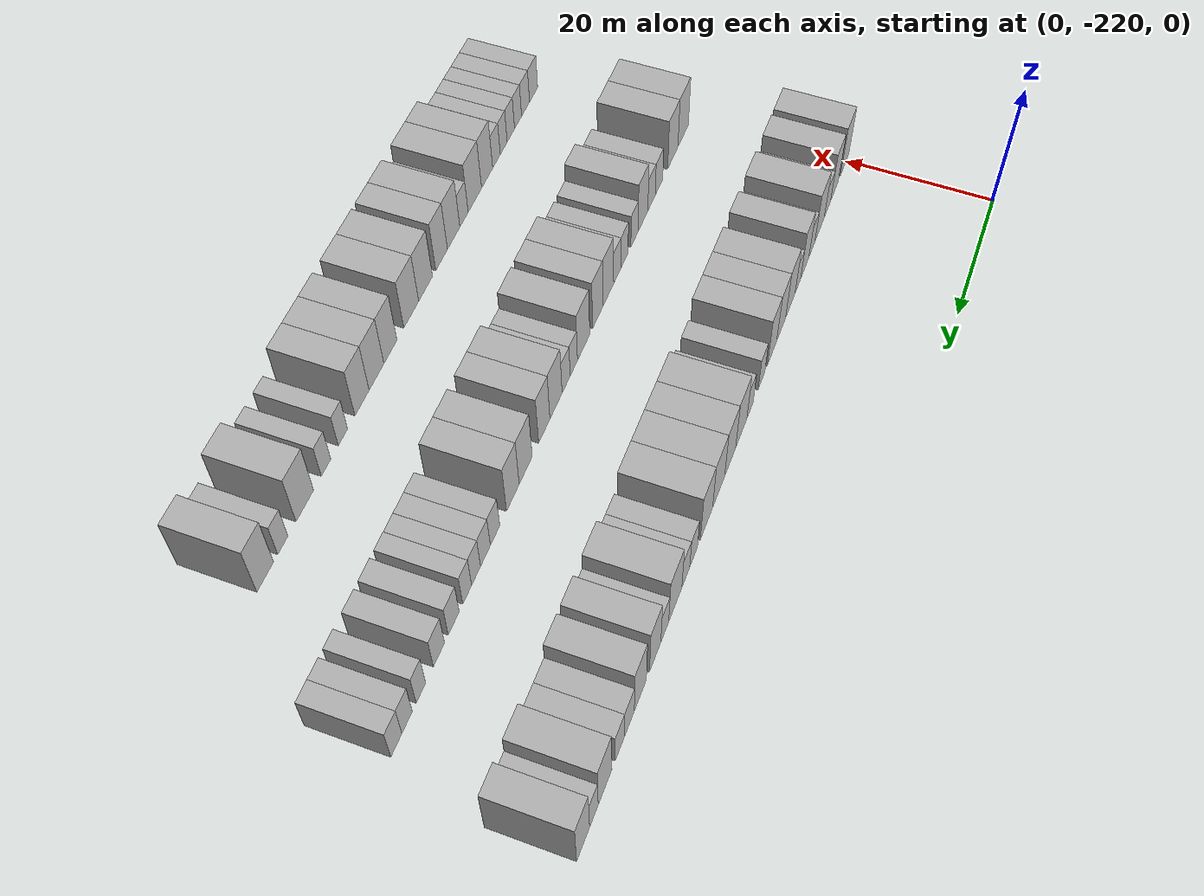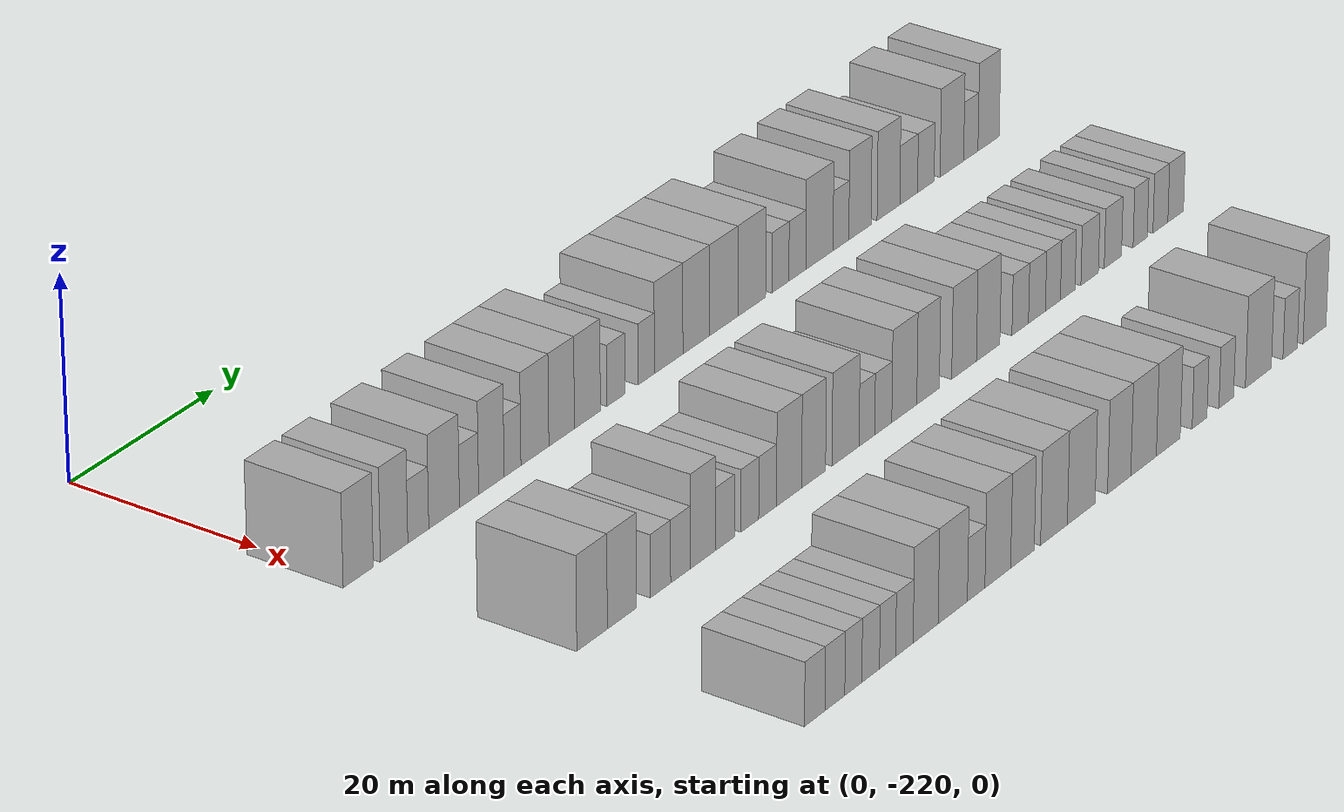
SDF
<sdf version="1.6">
 <world name="default">
  <model name="building_38">
   <static>1</static>
   <pose>25.0000 -219.2709 0 0.000000 0.000000 0.000000</pose>
   <link name="link">
    <pose>0 0 4.50 0 0 0</pose>
    <collision name="collision"><geometry><box><size>10.0000 4.2037 9.0000</size></box></geometry></collision>
    <visual name="visual">
     <cast_shadows>0</cast_shadows>
     <geometry><box><size>10.0000 4.2037 9.0000</size></box></geometry>
     <material>
      <script>
       <uri>model://HANNAS_wall/materials/scripts</uri>
       <uri>model://HANNAS_wall/materials/textures</uri>
       <name>vrc/HANNAS_wall</name>
      </script>
     </material>
    </visual>
   </link>
  </model>
  <model name="building_39">
   <static>1</static>
   <pose>25.0000 -214.2407 0 0.000000 0.000000 0.000000</pose>
   <link name="link">
    <pose>0 0 4.50 0 0 0</pose>
    <collision name="collision"><geometry><box><size>10.0000 3.8568 9.0000</size></box></geometry></collision>
    <visual name="visual">
     <cast_shadows>0</cast_shadows>
     <geometry><box><size>10.0000 3.8568 9.0000</size></box></geometry>
     <material>
      <script>
       <uri>model://HANNAS_wall/materials/scripts</uri>
       <uri>model://HANNAS_wall/materials/textures</uri>
       <name>vrc/HANNAS_wall</name>
      </script>
     </material>
    </visual>
   </link>
  </model>
  <model name="building_40">
   <static>1</static>
   <pose>25.0000 -210.8254 0 0.000000 0.000000 0.000000</pose>
   <link name="link">
    <pose>0 0 3.00 0 0 0</pose>
    <collision name="collision"><geometry><box><size>10.0000 2.9737 6.0000</size></box></geometry></collision>
    <visual name="visual">
     <cast_shadows>0</cast_shadows>
     <geometry><box><size>10.0000 2.9737 6.0000</size></box></geometry>
     <material>
      <script>
       <uri>model://HANNAS_wall/materials/scripts</uri>
       <uri>model://HANNAS_wall/materials/textures</uri>
       <name>vrc/HANNAS_wall</name>
      </script>
     </material>
    </visual>
   </link>
  </model>
  <model name="building_41">
   <static>1</static>
   <pose>25.0000 -207.1361 0 0.000000 0.000000 0.000000</pose>
   <link name="link">
    <pose>0 0 4.50 0 0 0</pose>
    <collision name="collision"><geometry><box><size>10.0000 4.4049 9.0000</size></box></geometry></collision>
    <visual name="visual">
     <cast_shadows>0</cast_shadows>
     <geometry><box><size>10.0000 4.4049 9.0000</size></box></geometry>
     <material>
      <script>
       <uri>model://HANNAS_wall/materials/scripts</uri>
       <uri>model://HANNAS_wall/materials/textures</uri>
       <name>vrc/HANNAS_wall</name>
      </script>
     </material>
    </visual>
   </link>
  </model>
  <model name="building_42">
   <static>1</static>
   <pose>25.0000 -203.5520 0 0.000000 0.000000 0.000000</pose>
   <link name="link">
    <pose>0 0 3.00 0 0 0</pose>
    <collision name="collision"><geometry><box><size>10.0000 2.7633 6.0000</size></box></geometry></collision>
    <visual name="visual">
     <cast_shadows>0</cast_shadows>
     <geometry><box><size>10.0000 2.7633 6.0000</size></box></geometry>
     <material>
      <script>
       <uri>model://HANNAS_wall/materials/scripts</uri>
       <uri>model://HANNAS_wall/materials/textures</uri>
       <name>vrc/HANNAS_wall</name>
      </script>
     </material>
    </visual>
   </link>
  </model>
  <model name="building_43">
   <static>1</static>
   <pose>25.0000 -200.3114 0 0.000000 0.000000 0.000000</pose>
   <link name="link">
    <pose>0 0 4.50 0 0 0</pose>
    <collision name="collision"><geometry><box><size>10.0000 3.7179 9.0000</size></box></geometry></collision>
    <visual name="visual">
     <cast_shadows>0</cast_shadows>
     <geometry><box><size>10.0000 3.7179 9.0000</size></box></geometry>
     <material>
      <script>
       <uri>model://HANNAS_wall/materials/scripts</uri>
       <uri>model://HANNAS_wall/materials/textures</uri>
       <name>vrc/HANNAS_wall</name>
      </script>
     </material>
    </visual>
   </link>
  </model>
  <model name="building_44">
   <static>1</static>
   <pose>25.0000 -197.2263 0 0.000000 0.000000 0.000000</pose>
   <link name="link">
    <pose>0 0 3.00 0 0 0</pose>
    <collision name="collision"><geometry><box><size>10.0000 2.4525 6.0000</size></box></geometry></collision>
    <visual name="visual">
     <cast_shadows>0</cast_shadows>
     <geometry><box><size>10.0000 2.4525 6.0000</size></box></geometry>
     <material>
      <script>
       <uri>model://HANNAS_wall/materials/scripts</uri>
       <uri>model://HANNAS_wall/materials/textures</uri>
       <name>vrc/HANNAS_wall</name>
      </script>
     </material>
    </visual>
   </link>
  </model>
  <model name="building_45">
   <static>1</static>
   <pose>25.0000 -193.9364 0 0.000000 0.000000 0.000000</pose>
   <link name="link">
    <pose>0 0 4.50 0 0 0</pose>
    <collision name="collision"><geometry><box><size>10.0000 4.1274 9.0000</size></box></geometry></collision>
    <visual name="visual">
     <cast_shadows>0</cast_shadows>
     <geometry><box><size>10.0000 4.1274 9.0000</size></box></geometry>
     <material>
      <script>
       <uri>model://HANNAS_wall/materials/scripts</uri>
       <uri>model://HANNAS_wall/materials/textures</uri>
       <name>vrc/HANNAS_wall</name>
      </script>
     </material>
    </visual>
   </link>
  </model>
  <model name="building_46">
   <static>1</static>
   <pose>25.0000 -189.9659 0 0.000000 0.000000 0.000000</pose>
   <link name="link">
    <pose>0 0 4.50 0 0 0</pose>
    <collision name="collision"><geometry><box><size>10.0000 3.8136 9.0000</size></box></geometry></collision>
    <visual name="visual">
     <cast_shadows>0</cast_shadows>
     <geometry><box><size>10.0000 3.8136 9.0000</size></box></geometry>
     <material>
      <script>
       <uri>model://HANNAS_wall/materials/scripts</uri>
       <uri>model://HANNAS_wall/materials/textures</uri>
       <name>vrc/HANNAS_wall</name>
      </script>
     </material>
    </visual>
   </link>
  </model>
  <model name="building_47">
   <static>1</static>
   <pose>25.0000 -186.1105 0 0.000000 0.000000 0.000000</pose>
   <link name="link">
    <pose>0 0 4.50 0 0 0</pose>
    <collision name="collision"><geometry><box><size>10.0000 3.8971 9.0000</size></box></geometry></collision>
    <visual name="visual">
     <cast_shadows>0</cast_shadows>
     <geometry><box><size>10.0000 3.8971 9.0000</size></box></geometry>
     <material>
      <script>
       <uri>model://HANNAS_wall/materials/scripts</uri>
       <uri>model://HANNAS_wall/materials/textures</uri>
       <name>vrc/HANNAS_wall</name>
      </script>
     </material>
    </visual>
   </link>
  </model>
  <model name="building_48">
   <static>1</static>
   <pose>25.0000 -181.7985 0 0.000000 0.000000 0.000000</pose>
   <link name="link">
    <pose>0 0 3.00 0 0 0</pose>
    <collision name="collision"><geometry><box><size>10.0000 2.7270 6.0000</size></box></geometry></collision>
    <visual name="visual">
     <cast_shadows>0</cast_shadows>
     <geometry><box><size>10.0000 2.7270 6.0000</size></box></geometry>
     <material>
      <script>
       <uri>model://HANNAS_wall/materials/scripts</uri>
       <uri>model://HANNAS_wall/materials/textures</uri>
       <name>vrc/HANNAS_wall</name>
      </script>
     </material>
    </visual>
   </link>
  </model>
  <model name="building_49">
   <static>1</static>
   <pose>25.0000 -177.1888 0 0.000000 0.000000 0.000000</pose>
   <link name="link">
    <pose>0 0 3.00 0 0 0</pose>
    <collision name="collision"><geometry><box><size>10.0000 2.4924 6.0000</size></box></geometry></collision>
    <visual name="visual">
     <cast_shadows>0</cast_shadows>
     <geometry><box><size>10.0000 2.4924 6.0000</size></box></geometry>
     <material>
      <script>
       <uri>model://HANNAS_wall/materials/scripts</uri>
       <uri>model://HANNAS_wall/materials/textures</uri>
       <name>vrc/HANNAS_wall</name>
      </script>
     </material>
    </visual>
   </link>
  </model>
  <model name="building_50">
   <static>1</static>
   <pose>25.0000 -173.7382 0 0.000000 0.000000 0.000000</pose>
   <link name="link">
    <pose>0 0 4.50 0 0 0</pose>
    <collision name="collision"><geometry><box><size>10.0000 4.4089 9.0000</size></box></geometry></collision>
    <visual name="visual">
     <cast_shadows>0</cast_shadows>
     <geometry><box><size>10.0000 4.4089 9.0000</size></box></geometry>
     <material>
      <script>
       <uri>model://HANNAS_wall/materials/scripts</uri>
       <uri>model://HANNAS_wall/materials/textures</uri>
       <name>vrc/HANNAS_wall</name>
      </script>
     </material>
    </visual>
   </link>
  </model>
  <model name="building_51">
   <static>1</static>
   <pose>25.0000 -169.4533 0 0.000000 0.000000 0.000000</pose>
   <link name="link">
    <pose>0 0 4.50 0 0 0</pose>
    <collision name="collision"><geometry><box><size>10.0000 4.1609 9.0000</size></box></geometry></collision>
    <visual name="visual">
     <cast_shadows>0</cast_shadows>
     <geometry><box><size>10.0000 4.1609 9.0000</size></box></geometry>
     <material>
      <script>
       <uri>model://HANNAS_wall/materials/scripts</uri>
       <uri>model://HANNAS_wall/materials/textures</uri>
       <name>vrc/HANNAS_wall</name>
      </script>
     </material>
    </visual>
   </link>
  </model>
  <model name="building_52">
   <static>1</static>
   <pose>25.0000 -165.1561 0 0.000000 0.000000 0.000000</pose>
   <link name="link">
    <pose>0 0 4.50 0 0 0</pose>
    <collision name="collision"><geometry><box><size>10.0000 4.4334 9.0000</size></box></geometry></collision>
    <visual name="visual">
     <cast_shadows>0</cast_shadows>
     <geometry><box><size>10.0000 4.4334 9.0000</size></box></geometry>
     <material>
      <script>
       <uri>model://HANNAS_wall/materials/scripts</uri>
       <uri>model://HANNAS_wall/materials/textures</uri>
       <name>vrc/HANNAS_wall</name>
      </script>
     </material>
    </visual>
   </link>
  </model>
  <model name="building_53">
   <static>1</static>
   <pose>25.0000 -160.7259 0 0.000000 0.000000 0.000000</pose>
   <link name="link">
    <pose>0 0 4.50 0 0 0</pose>
    <collision name="collision"><geometry><box><size>10.0000 4.4270 9.0000</size></box></geometry></collision>
    <visual name="visual">
     <cast_shadows>0</cast_shadows>
     <geometry><box><size>10.0000 4.4270 9.0000</size></box></geometry>
     <material>
      <script>
       <uri>model://HANNAS_wall/materials/scripts</uri>
       <uri>model://HANNAS_wall/materials/textures</uri>
       <name>vrc/HANNAS_wall</name>
      </script>
     </material>
    </visual>
   </link>
  </model>
  <model name="building_54">
   <static>1</static>
   <pose>25.0000 -156.1441 0 0.000000 0.000000 0.000000</pose>
   <link name="link">
    <pose>0 0 3.00 0 0 0</pose>
    <collision name="collision"><geometry><box><size>10.0000 2.7366 6.0000</size></box></geometry></collision>
    <visual name="visual">
     <cast_shadows>0</cast_shadows>
     <geometry><box><size>10.0000 2.7366 6.0000</size></box></geometry>
     <material>
      <script>
       <uri>model://HANNAS_wall/materials/scripts</uri>
       <uri>model://HANNAS_wall/materials/textures</uri>
       <name>vrc/HANNAS_wall</name>
      </script>
     </material>
    </visual>
   </link>
  </model>
  <model name="building_55">
   <static>1</static>
   <pose>25.0000 -153.4066 0 0.000000 0.000000 0.000000</pose>
   <link name="link">
    <pose>0 0 3.00 0 0 0</pose>
    <collision name="collision"><geometry><box><size>10.0000 2.7386 6.0000</size></box></geometry></collision>
    <visual name="visual">
     <cast_shadows>0</cast_shadows>
     <geometry><box><size>10.0000 2.7386 6.0000</size></box></geometry>
     <material>
      <script>
       <uri>model://HANNAS_wall/materials/scripts</uri>
       <uri>model://HANNAS_wall/materials/textures</uri>
       <name>vrc/HANNAS_wall</name>
      </script>
     </material>
    </visual>
   </link>
  </model>
  <model name="building_56">
   <static>1</static>
   <pose>25.0000 -149.8227 0 0.000000 0.000000 0.000000</pose>
   <link name="link">
    <pose>0 0 4.50 0 0 0</pose>
    <collision name="collision"><geometry><box><size>10.0000 4.4291 9.0000</size></box></geometry></collision>
    <visual name="visual">
     <cast_shadows>0</cast_shadows>
     <geometry><box><size>10.0000 4.4291 9.0000</size></box></geometry>
     <material>
      <script>
       <uri>model://HANNAS_wall/materials/scripts</uri>
       <uri>model://HANNAS_wall/materials/textures</uri>
       <name>vrc/HANNAS_wall</name>
      </script>
     </material>
    </visual>
   </link>
  </model>
  <model name="building_57">
   <static>1</static>
   <pose>25.0000 -146.3169 0 0.000000 0.000000 0.000000</pose>
   <link name="link">
    <pose>0 0 3.00 0 0 0</pose>
    <collision name="collision"><geometry><box><size>10.0000 2.5825 6.0000</size></box></geometry></collision>
    <visual name="visual">
     <cast_shadows>0</cast_shadows>
     <geometry><box><size>10.0000 2.5825 6.0000</size></box></geometry>
     <material>
      <script>
       <uri>model://HANNAS_wall/materials/scripts</uri>
       <uri>model://HANNAS_wall/materials/textures</uri>
       <name>vrc/HANNAS_wall</name>
      </script>
     </material>
    </visual>
   </link>
  </model>
  <model name="building_58">
   <static>1</static>
   <pose>25.0000 -143.1932 0 0.000000 0.000000 0.000000</pose>
   <link name="link">
    <pose>0 0 4.50 0 0 0</pose>
    <collision name="collision"><geometry><box><size>10.0000 3.6650 9.0000</size></box></geometry></collision>
    <visual name="visual">
     <cast_shadows>0</cast_shadows>
     <geometry><box><size>10.0000 3.6650 9.0000</size></box></geometry>
     <material>
      <script>
       <uri>model://HANNAS_wall/materials/scripts</uri>
       <uri>model://HANNAS_wall/materials/textures</uri>
       <name>vrc/HANNAS_wall</name>
      </script>
     </material>
    </visual>
   </link>
  </model>
  <model name="building_59">
   <static>1</static>
   <pose>25.0000 -138.4674 0 0.000000 0.000000 0.000000</pose>
   <link name="link">
    <pose>0 0 4.50 0 0 0</pose>
    <collision name="collision"><geometry><box><size>10.0000 3.7867 9.0000</size></box></geometry></collision>
    <visual name="visual">
     <cast_shadows>0</cast_shadows>
     <geometry><box><size>10.0000 3.7867 9.0000</size></box></geometry>
     <material>
      <script>
       <uri>model://HANNAS_wall/materials/scripts</uri>
       <uri>model://HANNAS_wall/materials/textures</uri>
       <name>vrc/HANNAS_wall</name>
      </script>
     </material>
    </visual>
   </link>
  </model>
  <model name="building_60">
   <static>1</static>
   <pose>25.0000 -135.0827 0 0.000000 0.000000 0.000000</pose>
   <link name="link">
    <pose>0 0 3.00 0 0 0</pose>
    <collision name="collision"><geometry><box><size>10.0000 2.9827 6.0000</size></box></geometry></collision>
    <visual name="visual">
     <cast_shadows>0</cast_shadows>
     <geometry><box><size>10.0000 2.9827 6.0000</size></box></geometry>
     <material>
      <script>
       <uri>model://HANNAS_wall/materials/scripts</uri>
       <uri>model://HANNAS_wall/materials/textures</uri>
       <name>vrc/HANNAS_wall</name>
      </script>
     </material>
    </visual>
   </link>
  </model>
  <model name="building_61">
   <static>1</static>
   <pose>25.0000 -132.1897 0 0.000000 0.000000 0.000000</pose>
   <link name="link">
    <pose>0 0 3.00 0 0 0</pose>
    <collision name="collision"><geometry><box><size>10.0000 2.8032 6.0000</size></box></geometry></collision>
    <visual name="visual">
     <cast_shadows>0</cast_shadows>
     <geometry><box><size>10.0000 2.8032 6.0000</size></box></geometry>
     <material>
      <script>
       <uri>model://HANNAS_wall/materials/scripts</uri>
       <uri>model://HANNAS_wall/materials/textures</uri>
       <name>vrc/HANNAS_wall</name>
      </script>
     </material>
    </visual>
   </link>
  </model>
  <model name="building_62">
   <static>1</static>
   <pose>25.0000 -127.7783 0 0.000000 0.000000 0.000000</pose>
   <link name="link">
    <pose>0 0 4.50 0 0 0</pose>
    <collision name="collision"><geometry><box><size>10.0000 4.0196 9.0000</size></box></geometry></collision>
    <visual name="visual">
     <cast_shadows>0</cast_shadows>
     <geometry><box><size>10.0000 4.0196 9.0000</size></box></geometry>
     <material>
      <script>
       <uri>model://HANNAS_wall/materials/scripts</uri>
       <uri>model://HANNAS_wall/materials/textures</uri>
       <name>vrc/HANNAS_wall</name>
      </script>
     </material>
    </visual>
   </link>
  </model>
  <model name="building_63">
   <static>1</static>
   <pose>25.0000 -124.5375 0 0.000000 0.000000 0.000000</pose>
   <link name="link">
    <pose>0 0 3.00 0 0 0</pose>
    <collision name="collision"><geometry><box><size>10.0000 2.4621 6.0000</size></box></geometry></collision>
    <visual name="visual">
     <cast_shadows>0</cast_shadows>
     <geometry><box><size>10.0000 2.4621 6.0000</size></box></geometry>
     <material>
      <script>
       <uri>model://HANNAS_wall/materials/scripts</uri>
       <uri>model://HANNAS_wall/materials/textures</uri>
       <name>vrc/HANNAS_wall</name>
      </script>
     </material>
    </visual>
   </link>
  </model>
  <model name="building_64">
   <static>1</static>
   <pose>25.0000 -121.4803 0 0.000000 0.000000 0.000000</pose>
   <link name="link">
    <pose>0 0 4.50 0 0 0</pose>
    <collision name="collision"><geometry><box><size>10.0000 3.6522 9.0000</size></box></geometry></collision>
    <visual name="visual">
     <cast_shadows>0</cast_shadows>
     <geometry><box><size>10.0000 3.6522 9.0000</size></box></geometry>
     <material>
      <script>
       <uri>model://HANNAS_wall/materials/scripts</uri>
       <uri>model://HANNAS_wall/materials/textures</uri>
       <name>vrc/HANNAS_wall</name>
      </script>
     </material>
    </visual>
   </link>
  </model>
  <model name="building_226">
   <static>1</static>
   <pose>47.0000 -216.8254 0 0.000000 0.000000 0.000000</pose>
   <link name="link">
    <pose>0 0 4.50 0 0 0</pose>
    <collision name="collision"><geometry><box><size>10.0000 4.3660 9.0000</size></box></geometry></collision>
    <visual name="visual">
     <cast_shadows>0</cast_shadows>
     <geometry><box><size>10.0000 4.3660 9.0000</size></box></geometry>
     <material>
      <script>
       <uri>model://HANNAS_wall/materials/scripts</uri>
       <uri>model://HANNAS_wall/materials/textures</uri>
       <name>vrc/HANNAS_wall</name>
      </script>
     </material>
    </visual>
   </link>
  </model>
  <model name="building_227">
   <static>1</static>
   <pose>47.0000 -212.5301 0 0.000000 0.000000 0.000000</pose>
   <link name="link">
    <pose>0 0 4.50 0 0 0</pose>
    <collision name="collision"><geometry><box><size>10.0000 4.2246 9.0000</size></box></geometry></collision>
    <visual name="visual">
     <cast_shadows>0</cast_shadows>
     <geometry><box><size>10.0000 4.2246 9.0000</size></box></geometry>
     <material>
      <script>
       <uri>model://HANNAS_wall/materials/scripts</uri>
       <uri>model://HANNAS_wall/materials/textures</uri>
       <name>vrc/HANNAS_wall</name>
      </script>
     </material>
    </visual>
   </link>
  </model>
  <model name="building_228">
   <static>1</static>
   <pose>47.0000 -206.9397 0 0.000000 0.000000 0.000000</pose>
   <link name="link">
    <pose>0 0 3.00 0 0 0</pose>
    <collision name="collision"><geometry><box><size>10.0000 2.9561 6.0000</size></box></geometry></collision>
    <visual name="visual">
     <cast_shadows>0</cast_shadows>
     <geometry><box><size>10.0000 2.9561 6.0000</size></box></geometry>
     <material>
      <script>
       <uri>model://HANNAS_wall/materials/scripts</uri>
       <uri>model://HANNAS_wall/materials/textures</uri>
       <name>vrc/HANNAS_wall</name>
      </script>
     </material>
    </visual>
   </link>
  </model>
  <model name="building_229">
   <static>1</static>
   <pose>47.0000 -204.0025 0 0.000000 0.000000 0.000000</pose>
   <link name="link">
    <pose>0 0 3.00 0 0 0</pose>
    <collision name="collision"><geometry><box><size>10.0000 2.9183 6.0000</size></box></geometry></collision>
    <visual name="visual">
     <cast_shadows>0</cast_shadows>
     <geometry><box><size>10.0000 2.9183 6.0000</size></box></geometry>
     <material>
      <script>
       <uri>model://HANNAS_wall/materials/scripts</uri>
       <uri>model://HANNAS_wall/materials/textures</uri>
       <name>vrc/HANNAS_wall</name>
      </script>
     </material>
    </visual>
   </link>
  </model>
  <model name="building_230">
   <static>1</static>
   <pose>47.0000 -200.6623 0 0.000000 0.000000 0.000000</pose>
   <link name="link">
    <pose>0 0 4.50 0 0 0</pose>
    <collision name="collision"><geometry><box><size>10.0000 3.7621 9.0000</size></box></geometry></collision>
    <visual name="visual">
     <cast_shadows>0</cast_shadows>
     <geometry><box><size>10.0000 3.7621 9.0000</size></box></geometry>
     <material>
      <script>
       <uri>model://HANNAS_wall/materials/scripts</uri>
       <uri>model://HANNAS_wall/materials/textures</uri>
       <name>vrc/HANNAS_wall</name>
      </script>
     </material>
    </visual>
   </link>
  </model>
  <model name="building_231">
   <static>1</static>
   <pose>47.0000 -197.4044 0 0.000000 0.000000 0.000000</pose>
   <link name="link">
    <pose>0 0 3.00 0 0 0</pose>
    <collision name="collision"><geometry><box><size>10.0000 2.7538 6.0000</size></box></geometry></collision>
    <visual name="visual">
     <cast_shadows>0</cast_shadows>
     <geometry><box><size>10.0000 2.7538 6.0000</size></box></geometry>
     <material>
      <script>
       <uri>model://HANNAS_wall/materials/scripts</uri>
       <uri>model://HANNAS_wall/materials/textures</uri>
       <name>vrc/HANNAS_wall</name>
      </script>
     </material>
    </visual>
   </link>
  </model>
  <model name="building_232">
   <static>1</static>
   <pose>47.0000 -193.7015 0 0.000000 0.000000 0.000000</pose>
   <link name="link">
    <pose>0 0 3.00 0 0 0</pose>
    <collision name="collision"><geometry><box><size>10.0000 2.6520 6.0000</size></box></geometry></collision>
    <visual name="visual">
     <cast_shadows>0</cast_shadows>
     <geometry><box><size>10.0000 2.6520 6.0000</size></box></geometry>
     <material>
      <script>
       <uri>model://HANNAS_wall/materials/scripts</uri>
       <uri>model://HANNAS_wall/materials/textures</uri>
       <name>vrc/HANNAS_wall</name>
      </script>
     </material>
    </visual>
   </link>
  </model>
  <model name="building_233">
   <static>1</static>
   <pose>47.0000 -191.0137 0 0.000000 0.000000 0.000000</pose>
   <link name="link">
    <pose>0 0 3.00 0 0 0</pose>
    <collision name="collision"><geometry><box><size>10.0000 2.7234 6.0000</size></box></geometry></collision>
    <visual name="visual">
     <cast_shadows>0</cast_shadows>
     <geometry><box><size>10.0000 2.7234 6.0000</size></box></geometry>
     <material>
      <script>
       <uri>model://HANNAS_wall/materials/scripts</uri>
       <uri>model://HANNAS_wall/materials/textures</uri>
       <name>vrc/HANNAS_wall</name>
      </script>
     </material>
    </visual>
   </link>
  </model>
  <model name="building_234">
   <static>1</static>
   <pose>47.0000 -187.7347 0 0.000000 0.000000 0.000000</pose>
   <link name="link">
    <pose>0 0 4.50 0 0 0</pose>
    <collision name="collision"><geometry><box><size>10.0000 3.8347 9.0000</size></box></geometry></collision>
    <visual name="visual">
     <cast_shadows>0</cast_shadows>
     <geometry><box><size>10.0000 3.8347 9.0000</size></box></geometry>
     <material>
      <script>
       <uri>model://HANNAS_wall/materials/scripts</uri>
       <uri>model://HANNAS_wall/materials/textures</uri>
       <name>vrc/HANNAS_wall</name>
      </script>
     </material>
    </visual>
   </link>
  </model>
  <model name="building_235">
   <static>1</static>
   <pose>47.0000 -183.9816 0 0.000000 0.000000 0.000000</pose>
   <link name="link">
    <pose>0 0 4.50 0 0 0</pose>
    <collision name="collision"><geometry><box><size>10.0000 3.6716 9.0000</size></box></geometry></collision>
    <visual name="visual">
     <cast_shadows>0</cast_shadows>
     <geometry><box><size>10.0000 3.6716 9.0000</size></box></geometry>
     <material>
      <script>
       <uri>model://HANNAS_wall/materials/scripts</uri>
       <uri>model://HANNAS_wall/materials/textures</uri>
       <name>vrc/HANNAS_wall</name>
      </script>
     </material>
    </visual>
   </link>
  </model>
  <model name="building_236">
   <static>1</static>
   <pose>47.0000 -179.0392 0 0.000000 0.000000 0.000000</pose>
   <link name="link">
    <pose>0 0 4.50 0 0 0</pose>
    <collision name="collision"><geometry><box><size>10.0000 4.2132 9.0000</size></box></geometry></collision>
    <visual name="visual">
     <cast_shadows>0</cast_shadows>
     <geometry><box><size>10.0000 4.2132 9.0000</size></box></geometry>
     <material>
      <script>
       <uri>model://HANNAS_wall/materials/scripts</uri>
       <uri>model://HANNAS_wall/materials/textures</uri>
       <name>vrc/HANNAS_wall</name>
      </script>
     </material>
    </visual>
   </link>
  </model>
  <model name="building_237">
   <static>1</static>
   <pose>47.0000 -175.7044 0 0.000000 0.000000 0.000000</pose>
   <link name="link">
    <pose>0 0 3.00 0 0 0</pose>
    <collision name="collision"><geometry><box><size>10.0000 2.4564 6.0000</size></box></geometry></collision>
    <visual name="visual">
     <cast_shadows>0</cast_shadows>
     <geometry><box><size>10.0000 2.4564 6.0000</size></box></geometry>
     <material>
      <script>
       <uri>model://HANNAS_wall/materials/scripts</uri>
       <uri>model://HANNAS_wall/materials/textures</uri>
       <name>vrc/HANNAS_wall</name>
      </script>
     </material>
    </visual>
   </link>
  </model>
  <model name="building_238">
   <static>1</static>
   <pose>47.0000 -173.1338 0 0.000000 0.000000 0.000000</pose>
   <link name="link">
    <pose>0 0 3.00 0 0 0</pose>
    <collision name="collision"><geometry><box><size>10.0000 2.6847 6.0000</size></box></geometry></collision>
    <visual name="visual">
     <cast_shadows>0</cast_shadows>
     <geometry><box><size>10.0000 2.6847 6.0000</size></box></geometry>
     <material>
      <script>
       <uri>model://HANNAS_wall/materials/scripts</uri>
       <uri>model://HANNAS_wall/materials/textures</uri>
       <name>vrc/HANNAS_wall</name>
      </script>
     </material>
    </visual>
   </link>
  </model>
  <model name="building_239">
   <static>1</static>
   <pose>47.0000 -169.8014 0 0.000000 0.000000 0.000000</pose>
   <link name="link">
    <pose>0 0 4.50 0 0 0</pose>
    <collision name="collision"><geometry><box><size>10.0000 3.9803 9.0000</size></box></geometry></collision>
    <visual name="visual">
     <cast_shadows>0</cast_shadows>
     <geometry><box><size>10.0000 3.9803 9.0000</size></box></geometry>
     <material>
      <script>
       <uri>model://HANNAS_wall/materials/scripts</uri>
       <uri>model://HANNAS_wall/materials/textures</uri>
       <name>vrc/HANNAS_wall</name>
      </script>
     </material>
    </visual>
   </link>
  </model>
  <model name="building_240">
   <static>1</static>
   <pose>47.0000 -166.0091 0 0.000000 0.000000 0.000000</pose>
   <link name="link">
    <pose>0 0 4.50 0 0 0</pose>
    <collision name="collision"><geometry><box><size>10.0000 3.6042 9.0000</size></box></geometry></collision>
    <visual name="visual">
     <cast_shadows>0</cast_shadows>
     <geometry><box><size>10.0000 3.6042 9.0000</size></box></geometry>
     <material>
      <script>
       <uri>model://HANNAS_wall/materials/scripts</uri>
       <uri>model://HANNAS_wall/materials/textures</uri>
       <name>vrc/HANNAS_wall</name>
      </script>
     </material>
    </visual>
   </link>
  </model>
  <model name="building_241">
   <static>1</static>
   <pose>47.0000 -160.1987 0 0.000000 0.000000 0.000000</pose>
   <link name="link">
    <pose>0 0 4.50 0 0 0</pose>
    <collision name="collision"><geometry><box><size>10.0000 4.0167 9.0000</size></box></geometry></collision>
    <visual name="visual">
     <cast_shadows>0</cast_shadows>
     <geometry><box><size>10.0000 4.0167 9.0000</size></box></geometry>
     <material>
      <script>
       <uri>model://HANNAS_wall/materials/scripts</uri>
       <uri>model://HANNAS_wall/materials/textures</uri>
       <name>vrc/HANNAS_wall</name>
      </script>
     </material>
    </visual>
   </link>
  </model>
  <model name="building_242">
   <static>1</static>
   <pose>47.0000 -156.2746 0 0.000000 0.000000 0.000000</pose>
   <link name="link">
    <pose>0 0 4.50 0 0 0</pose>
    <collision name="collision"><geometry><box><size>10.0000 3.8315 9.0000</size></box></geometry></collision>
    <visual name="visual">
     <cast_shadows>0</cast_shadows>
     <geometry><box><size>10.0000 3.8315 9.0000</size></box></geometry>
     <material>
      <script>
       <uri>model://HANNAS_wall/materials/scripts</uri>
       <uri>model://HANNAS_wall/materials/textures</uri>
       <name>vrc/HANNAS_wall</name>
      </script>
     </material>
    </visual>
   </link>
  </model>
  <model name="building_243">
   <static>1</static>
   <pose>47.0000 -150.9905 0 0.000000 0.000000 0.000000</pose>
   <link name="link">
    <pose>0 0 3.00 0 0 0</pose>
    <collision name="collision"><geometry><box><size>10.0000 2.7366 6.0000</size></box></geometry></collision>
    <visual name="visual">
     <cast_shadows>0</cast_shadows>
     <geometry><box><size>10.0000 2.7366 6.0000</size></box></geometry>
     <material>
      <script>
       <uri>model://HANNAS_wall/materials/scripts</uri>
       <uri>model://HANNAS_wall/materials/textures</uri>
       <name>vrc/HANNAS_wall</name>
      </script>
     </material>
    </visual>
   </link>
  </model>
  <model name="building_244">
   <static>1</static>
   <pose>47.0000 -148.2112 0 0.000000 0.000000 0.000000</pose>
   <link name="link">
    <pose>0 0 3.00 0 0 0</pose>
    <collision name="collision"><geometry><box><size>10.0000 2.8221 6.0000</size></box></geometry></collision>
    <visual name="visual">
     <cast_shadows>0</cast_shadows>
     <geometry><box><size>10.0000 2.8221 6.0000</size></box></geometry>
     <material>
      <script>
       <uri>model://HANNAS_wall/materials/scripts</uri>
       <uri>model://HANNAS_wall/materials/textures</uri>
       <name>vrc/HANNAS_wall</name>
      </script>
     </material>
    </visual>
   </link>
  </model>
  <model name="building_245">
   <static>1</static>
   <pose>47.0000 -145.5402 0 0.000000 0.000000 0.000000</pose>
   <link name="link">
    <pose>0 0 3.00 0 0 0</pose>
    <collision name="collision"><geometry><box><size>10.0000 2.5199 6.0000</size></box></geometry></collision>
    <visual name="visual">
     <cast_shadows>0</cast_shadows>
     <geometry><box><size>10.0000 2.5199 6.0000</size></box></geometry>
     <material>
      <script>
       <uri>model://HANNAS_wall/materials/scripts</uri>
       <uri>model://HANNAS_wall/materials/textures</uri>
       <name>vrc/HANNAS_wall</name>
      </script>
     </material>
    </visual>
   </link>
  </model>
  <model name="building_246">
   <static>1</static>
   <pose>47.0000 -143.0531 0 0.000000 0.000000 0.000000</pose>
   <link name="link">
    <pose>0 0 3.00 0 0 0</pose>
    <collision name="collision"><geometry><box><size>10.0000 2.4543 6.0000</size></box></geometry></collision>
    <visual name="visual">
     <cast_shadows>0</cast_shadows>
     <geometry><box><size>10.0000 2.4543 6.0000</size></box></geometry>
     <material>
      <script>
       <uri>model://HANNAS_wall/materials/scripts</uri>
       <uri>model://HANNAS_wall/materials/textures</uri>
       <name>vrc/HANNAS_wall</name>
      </script>
     </material>
    </visual>
   </link>
  </model>
  <model name="building_247">
   <static>1</static>
   <pose>47.0000 -139.3410 0 0.000000 0.000000 0.000000</pose>
   <link name="link">
    <pose>0 0 3.00 0 0 0</pose>
    <collision name="collision"><geometry><box><size>10.0000 2.9699 6.0000</size></box></geometry></collision>
    <visual name="visual">
     <cast_shadows>0</cast_shadows>
     <geometry><box><size>10.0000 2.9699 6.0000</size></box></geometry>
     <material>
      <script>
       <uri>model://HANNAS_wall/materials/scripts</uri>
       <uri>model://HANNAS_wall/materials/textures</uri>
       <name>vrc/HANNAS_wall</name>
      </script>
     </material>
    </visual>
   </link>
  </model>
  <model name="building_248">
   <static>1</static>
   <pose>47.0000 -135.3747 0 0.000000 0.000000 0.000000</pose>
   <link name="link">
    <pose>0 0 3.00 0 0 0</pose>
    <collision name="collision"><geometry><box><size>10.0000 2.9626 6.0000</size></box></geometry></collision>
    <visual name="visual">
     <cast_shadows>0</cast_shadows>
     <geometry><box><size>10.0000 2.9626 6.0000</size></box></geometry>
     <material>
      <script>
       <uri>model://HANNAS_wall/materials/scripts</uri>
       <uri>model://HANNAS_wall/materials/textures</uri>
       <name>vrc/HANNAS_wall</name>
      </script>
     </material>
    </visual>
   </link>
  </model>
  <model name="building_249">
   <static>1</static>
   <pose>47.0000 -130.6732 0 0.000000 0.000000 0.000000</pose>
   <link name="link">
    <pose>0 0 3.00 0 0 0</pose>
    <collision name="collision"><geometry><box><size>10.0000 2.4405 6.0000</size></box></geometry></collision>
    <visual name="visual">
     <cast_shadows>0</cast_shadows>
     <geometry><box><size>10.0000 2.4405 6.0000</size></box></geometry>
     <material>
      <script>
       <uri>model://HANNAS_wall/materials/scripts</uri>
       <uri>model://HANNAS_wall/materials/textures</uri>
       <name>vrc/HANNAS_wall</name>
      </script>
     </material>
    </visual>
   </link>
  </model>
  <model name="building_250">
   <static>1</static>
   <pose>47.0000 -127.1497 0 0.000000 0.000000 0.000000</pose>
   <link name="link">
    <pose>0 0 3.00 0 0 0</pose>
    <collision name="collision"><geometry><box><size>10.0000 2.6064 6.0000</size></box></geometry></collision>
    <visual name="visual">
     <cast_shadows>0</cast_shadows>
     <geometry><box><size>10.0000 2.6064 6.0000</size></box></geometry>
     <material>
      <script>
       <uri>model://HANNAS_wall/materials/scripts</uri>
       <uri>model://HANNAS_wall/materials/textures</uri>
       <name>vrc/HANNAS_wall</name>
      </script>
     </material>
    </visual>
   </link>
  </model>
  <model name="building_251">
   <static>1</static>
   <pose>47.0000 -124.4774 0 0.000000 0.000000 0.000000</pose>
   <link name="link">
    <pose>0 0 3.00 0 0 0</pose>
    <collision name="collision"><geometry><box><size>10.0000 2.7382 6.0000</size></box></geometry></collision>
    <visual name="visual">
     <cast_shadows>0</cast_shadows>
     <geometry><box><size>10.0000 2.7382 6.0000</size></box></geometry>
     <material>
      <script>
       <uri>model://HANNAS_wall/materials/scripts</uri>
       <uri>model://HANNAS_wall/materials/textures</uri>
       <name>vrc/HANNAS_wall</name>
      </script>
     </material>
    </visual>
   </link>
  </model>
  <model name="building_404">
   <static>1</static>
   <pose>69.0000 -217.0314 0 0.000000 0.000000 0.000000</pose>
   <link name="link">
    <pose>0 0 3.00 0 0 0</pose>
    <collision name="collision"><geometry><box><size>10.0000 2.9832 6.0000</size></box></geometry></collision>
    <visual name="visual">
     <cast_shadows>0</cast_shadows>
     <geometry><box><size>10.0000 2.9832 6.0000</size></box></geometry>
     <material>
      <script>
       <uri>model://HANNAS_wall/materials/scripts</uri>
       <uri>model://HANNAS_wall/materials/textures</uri>
       <name>vrc/HANNAS_wall</name>
      </script>
     </material>
    </visual>
   </link>
  </model>
  <model name="building_405">
   <static>1</static>
   <pose>69.0000 -214.0904 0 0.000000 0.000000 0.000000</pose>
   <link name="link">
    <pose>0 0 3.00 0 0 0</pose>
    <collision name="collision"><geometry><box><size>10.0000 2.8987 6.0000</size></box></geometry></collision>
    <visual name="visual">
     <cast_shadows>0</cast_shadows>
     <geometry><box><size>10.0000 2.8987 6.0000</size></box></geometry>
     <material>
      <script>
       <uri>model://HANNAS_wall/materials/scripts</uri>
       <uri>model://HANNAS_wall/materials/textures</uri>
       <name>vrc/HANNAS_wall</name>
      </script>
     </material>
    </visual>
   </link>
  </model>
  <model name="building_406">
   <static>1</static>
   <pose>69.0000 -211.3818 0 0.000000 0.000000 0.000000</pose>
   <link name="link">
    <pose>0 0 3.00 0 0 0</pose>
    <collision name="collision"><geometry><box><size>10.0000 2.5186 6.0000</size></box></geometry></collision>
    <visual name="visual">
     <cast_shadows>0</cast_shadows>
     <geometry><box><size>10.0000 2.5186 6.0000</size></box></geometry>
     <material>
      <script>
       <uri>model://HANNAS_wall/materials/scripts</uri>
       <uri>model://HANNAS_wall/materials/textures</uri>
       <name>vrc/HANNAS_wall</name>
      </script>
     </material>
    </visual>
   </link>
  </model>
  <model name="building_407">
   <static>1</static>
   <pose>69.0000 -208.8121 0 0.000000 0.000000 0.000000</pose>
   <link name="link">
    <pose>0 0 3.00 0 0 0</pose>
    <collision name="collision"><geometry><box><size>10.0000 2.6209 6.0000</size></box></geometry></collision>
    <visual name="visual">
     <cast_shadows>0</cast_shadows>
     <geometry><box><size>10.0000 2.6209 6.0000</size></box></geometry>
     <material>
      <script>
       <uri>model://HANNAS_wall/materials/scripts</uri>
       <uri>model://HANNAS_wall/materials/textures</uri>
       <name>vrc/HANNAS_wall</name>
      </script>
     </material>
    </visual>
   </link>
  </model>
  <model name="building_408">
   <static>1</static>
   <pose>69.0000 -206.2951 0 0.000000 0.000000 0.000000</pose>
   <link name="link">
    <pose>0 0 3.00 0 0 0</pose>
    <collision name="collision"><geometry><box><size>10.0000 2.4130 6.0000</size></box></geometry></collision>
    <visual name="visual">
     <cast_shadows>0</cast_shadows>
     <geometry><box><size>10.0000 2.4130 6.0000</size></box></geometry>
     <material>
      <script>
       <uri>model://HANNAS_wall/materials/scripts</uri>
       <uri>model://HANNAS_wall/materials/textures</uri>
       <name>vrc/HANNAS_wall</name>
      </script>
     </material>
    </visual>
   </link>
  </model>
  <model name="building_409">
   <static>1</static>
   <pose>69.0000 -203.7743 0 0.000000 0.000000 0.000000</pose>
   <link name="link">
    <pose>0 0 3.00 0 0 0</pose>
    <collision name="collision"><geometry><box><size>10.0000 2.6287 6.0000</size></box></geometry></collision>
    <visual name="visual">
     <cast_shadows>0</cast_shadows>
     <geometry><box><size>10.0000 2.6287 6.0000</size></box></geometry>
     <material>
      <script>
       <uri>model://HANNAS_wall/materials/scripts</uri>
       <uri>model://HANNAS_wall/materials/textures</uri>
       <name>vrc/HANNAS_wall</name>
      </script>
     </material>
    </visual>
   </link>
  </model>
  <model name="building_410">
   <static>1</static>
   <pose>69.0000 -200.5707 0 0.000000 0.000000 0.000000</pose>
   <link name="link">
    <pose>0 0 4.50 0 0 0</pose>
    <collision name="collision"><geometry><box><size>10.0000 3.7785 9.0000</size></box></geometry></collision>
    <visual name="visual">
     <cast_shadows>0</cast_shadows>
     <geometry><box><size>10.0000 3.7785 9.0000</size></box></geometry>
     <material>
      <script>
       <uri>model://HANNAS_wall/materials/scripts</uri>
       <uri>model://HANNAS_wall/materials/textures</uri>
       <name>vrc/HANNAS_wall</name>
      </script>
     </material>
    </visual>
   </link>
  </model>
  <model name="building_411">
   <static>1</static>
   <pose>69.0000 -196.4429 0 0.000000 0.000000 0.000000</pose>
   <link name="link">
    <pose>0 0 4.50 0 0 0</pose>
    <collision name="collision"><geometry><box><size>10.0000 4.4771 9.0000</size></box></geometry></collision>
    <visual name="visual">
     <cast_shadows>0</cast_shadows>
     <geometry><box><size>10.0000 4.4771 9.0000</size></box></geometry>
     <material>
      <script>
       <uri>model://HANNAS_wall/materials/scripts</uri>
       <uri>model://HANNAS_wall/materials/textures</uri>
       <name>vrc/HANNAS_wall</name>
      </script>
     </material>
    </visual>
   </link>
  </model>
  <model name="building_412">
   <static>1</static>
   <pose>69.0000 -192.8540 0 0.000000 0.000000 0.000000</pose>
   <link name="link">
    <pose>0 0 3.00 0 0 0</pose>
    <collision name="collision"><geometry><box><size>10.0000 2.7007 6.0000</size></box></geometry></collision>
    <visual name="visual">
     <cast_shadows>0</cast_shadows>
     <geometry><box><size>10.0000 2.7007 6.0000</size></box></geometry>
     <material>
      <script>
       <uri>model://HANNAS_wall/materials/scripts</uri>
       <uri>model://HANNAS_wall/materials/textures</uri>
       <name>vrc/HANNAS_wall</name>
      </script>
     </material>
    </visual>
   </link>
  </model>
  <model name="building_413">
   <static>1</static>
   <pose>69.0000 -189.5050 0 0.000000 0.000000 0.000000</pose>
   <link name="link">
    <pose>0 0 4.50 0 0 0</pose>
    <collision name="collision"><geometry><box><size>10.0000 3.9974 9.0000</size></box></geometry></collision>
    <visual name="visual">
     <cast_shadows>0</cast_shadows>
     <geometry><box><size>10.0000 3.9974 9.0000</size></box></geometry>
     <material>
      <script>
       <uri>model://HANNAS_wall/materials/scripts</uri>
       <uri>model://HANNAS_wall/materials/textures</uri>
       <name>vrc/HANNAS_wall</name>
      </script>
     </material>
    </visual>
   </link>
  </model>
  <model name="building_414">
   <static>1</static>
   <pose>69.0000 -185.6559 0 0.000000 0.000000 0.000000</pose>
   <link name="link">
    <pose>0 0 4.50 0 0 0</pose>
    <collision name="collision"><geometry><box><size>10.0000 3.7008 9.0000</size></box></geometry></collision>
    <visual name="visual">
     <cast_shadows>0</cast_shadows>
     <geometry><box><size>10.0000 3.7008 9.0000</size></box></geometry>
     <material>
      <script>
       <uri>model://HANNAS_wall/materials/scripts</uri>
       <uri>model://HANNAS_wall/materials/textures</uri>
       <name>vrc/HANNAS_wall</name>
      </script>
     </material>
    </visual>
   </link>
  </model>
  <model name="building_415">
   <static>1</static>
   <pose>69.0000 -180.6822 0 0.000000 0.000000 0.000000</pose>
   <link name="link">
    <pose>0 0 4.50 0 0 0</pose>
    <collision name="collision"><geometry><box><size>10.0000 4.2466 9.0000</size></box></geometry></collision>
    <visual name="visual">
     <cast_shadows>0</cast_shadows>
     <geometry><box><size>10.0000 4.2466 9.0000</size></box></geometry>
     <material>
      <script>
       <uri>model://HANNAS_wall/materials/scripts</uri>
       <uri>model://HANNAS_wall/materials/textures</uri>
       <name>vrc/HANNAS_wall</name>
      </script>
     </material>
    </visual>
   </link>
  </model>
  <model name="building_416">
   <static>1</static>
   <pose>69.0000 -176.3323 0 0.000000 0.000000 0.000000</pose>
   <link name="link">
    <pose>0 0 4.50 0 0 0</pose>
    <collision name="collision"><geometry><box><size>10.0000 4.4530 9.0000</size></box></geometry></collision>
    <visual name="visual">
     <cast_shadows>0</cast_shadows>
     <geometry><box><size>10.0000 4.4530 9.0000</size></box></geometry>
     <material>
      <script>
       <uri>model://HANNAS_wall/materials/scripts</uri>
       <uri>model://HANNAS_wall/materials/textures</uri>
       <name>vrc/HANNAS_wall</name>
      </script>
     </material>
    </visual>
   </link>
  </model>
  <model name="building_417">
   <static>1</static>
   <pose>69.0000 -170.2161 0 0.000000 0.000000 0.000000</pose>
   <link name="link">
    <pose>0 0 4.50 0 0 0</pose>
    <collision name="collision"><geometry><box><size>10.0000 3.7795 9.0000</size></box></geometry></collision>
    <visual name="visual">
     <cast_shadows>0</cast_shadows>
     <geometry><box><size>10.0000 3.7795 9.0000</size></box></geometry>
     <material>
      <script>
       <uri>model://HANNAS_wall/materials/scripts</uri>
       <uri>model://HANNAS_wall/materials/textures</uri>
       <name>vrc/HANNAS_wall</name>
      </script>
     </material>
    </visual>
   </link>
  </model>
  <model name="building_418">
   <static>1</static>
   <pose>69.0000 -166.2327 0 0.000000 0.000000 0.000000</pose>
   <link name="link">
    <pose>0 0 4.50 0 0 0</pose>
    <collision name="collision"><geometry><box><size>10.0000 4.1872 9.0000</size></box></geometry></collision>
    <visual name="visual">
     <cast_shadows>0</cast_shadows>
     <geometry><box><size>10.0000 4.1872 9.0000</size></box></geometry>
     <material>
      <script>
       <uri>model://HANNAS_wall/materials/scripts</uri>
       <uri>model://HANNAS_wall/materials/textures</uri>
       <name>vrc/HANNAS_wall</name>
      </script>
     </material>
    </visual>
   </link>
  </model>
  <model name="building_419">
   <static>1</static>
   <pose>69.0000 -162.1718 0 0.000000 0.000000 0.000000</pose>
   <link name="link">
    <pose>0 0 4.50 0 0 0</pose>
    <collision name="collision"><geometry><box><size>10.0000 3.9346 9.0000</size></box></geometry></collision>
    <visual name="visual">
     <cast_shadows>0</cast_shadows>
     <geometry><box><size>10.0000 3.9346 9.0000</size></box></geometry>
     <material>
      <script>
       <uri>model://HANNAS_wall/materials/scripts</uri>
       <uri>model://HANNAS_wall/materials/textures</uri>
       <name>vrc/HANNAS_wall</name>
      </script>
     </material>
    </visual>
   </link>
  </model>
  <model name="building_420">
   <static>1</static>
   <pose>69.0000 -156.9615 0 0.000000 0.000000 0.000000</pose>
   <link name="link">
    <pose>0 0 3.00 0 0 0</pose>
    <collision name="collision"><geometry><box><size>10.0000 2.4862 6.0000</size></box></geometry></collision>
    <visual name="visual">
     <cast_shadows>0</cast_shadows>
     <geometry><box><size>10.0000 2.4862 6.0000</size></box></geometry>
     <material>
      <script>
       <uri>model://HANNAS_wall/materials/scripts</uri>
       <uri>model://HANNAS_wall/materials/textures</uri>
       <name>vrc/HANNAS_wall</name>
      </script>
     </material>
    </visual>
   </link>
  </model>
  <model name="building_421">
   <static>1</static>
   <pose>69.0000 -152.4803 0 0.000000 0.000000 0.000000</pose>
   <link name="link">
    <pose>0 0 3.00 0 0 0</pose>
    <collision name="collision"><geometry><box><size>10.0000 2.4762 6.0000</size></box></geometry></collision>
    <visual name="visual">
     <cast_shadows>0</cast_shadows>
     <geometry><box><size>10.0000 2.4762 6.0000</size></box></geometry>
     <material>
      <script>
       <uri>model://HANNAS_wall/materials/scripts</uri>
       <uri>model://HANNAS_wall/materials/textures</uri>
       <name>vrc/HANNAS_wall</name>
      </script>
     </material>
    </visual>
   </link>
  </model>
  <model name="building_422">
   <static>1</static>
   <pose>69.0000 -147.0196 0 0.000000 0.000000 0.000000</pose>
   <link name="link">
    <pose>0 0 4.50 0 0 0</pose>
    <collision name="collision"><geometry><box><size>10.0000 4.4451 9.0000</size></box></geometry></collision>
    <visual name="visual">
     <cast_shadows>0</cast_shadows>
     <geometry><box><size>10.0000 4.4451 9.0000</size></box></geometry>
     <material>
      <script>
       <uri>model://HANNAS_wall/materials/scripts</uri>
       <uri>model://HANNAS_wall/materials/textures</uri>
       <name>vrc/HANNAS_wall</name>
      </script>
     </material>
    </visual>
   </link>
  </model>
  <model name="building_423">
   <static>1</static>
   <pose>69.0000 -141.5462 0 0.000000 0.000000 0.000000</pose>
   <link name="link">
    <pose>0 0 3.00 0 0 0</pose>
    <collision name="collision"><geometry><box><size>10.0000 2.5017 6.0000</size></box></geometry></collision>
    <visual name="visual">
     <cast_shadows>0</cast_shadows>
     <geometry><box><size>10.0000 2.5017 6.0000</size></box></geometry>
     <material>
      <script>
       <uri>model://HANNAS_wall/materials/scripts</uri>
       <uri>model://HANNAS_wall/materials/textures</uri>
       <name>vrc/HANNAS_wall</name>
      </script>
     </material>
    </visual>
   </link>
  </model>
  <model name="building_424">
   <static>1</static>
   <pose>69.0000 -137.2902 0 0.000000 0.000000 0.000000</pose>
   <link name="link">
    <pose>0 0 4.50 0 0 0</pose>
    <collision name="collision"><geometry><box><size>10.0000 4.0104 9.0000</size></box></geometry></collision>
    <visual name="visual">
     <cast_shadows>0</cast_shadows>
     <geometry><box><size>10.0000 4.0104 9.0000</size></box></geometry>
     <material>
      <script>
       <uri>model://HANNAS_wall/materials/scripts</uri>
       <uri>model://HANNAS_wall/materials/textures</uri>
       <name>vrc/HANNAS_wall</name>
      </script>
     </material>
    </visual>
   </link>
  </model>
 </world>
</sdf>
